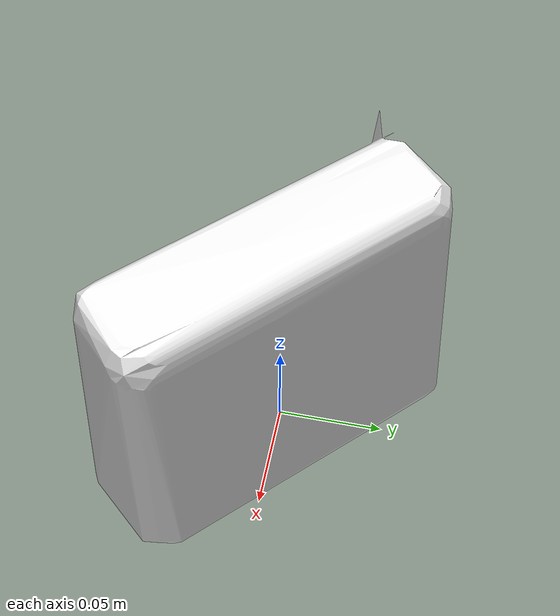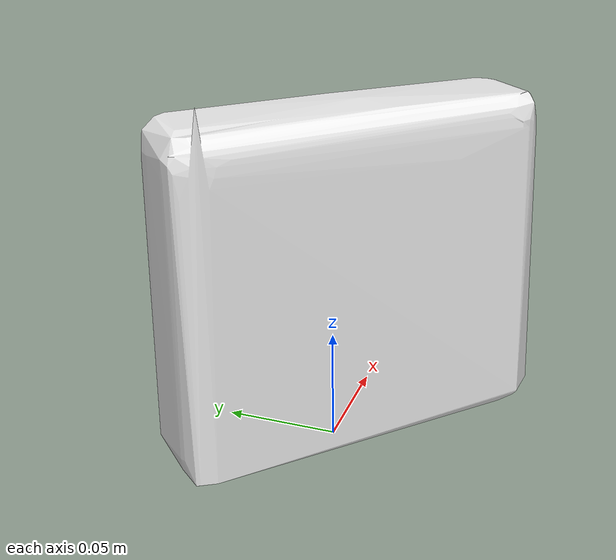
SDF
<?xml version='1.0'?>
<sdf version="1.4">
  <model name="clif_crunch_white_chocolate_macademia_nut">
    <static>false</static>
    <link name="link">
      <inertial>
        <pose>0.013065570766222109 -0.0026968554300056597 0.07489887787279072 1.5574703786760513 0.01265800758050543 -2.3611111910469815</pose>
        <mass>0.12054650007775884</mass>
        <inertia>
          <ixx>0.00046412480492953996</ixx>
          <ixy>1.0743052893661811e-21</ixy>
          <ixz>1.5359518234319693e-20</ixz>
          <iyy>0.00028820831488987126</iyy>
          <iyz>-6.106252291272276e-22</iyz>
          <izz>0.00022979933310841324</izz>
        </inertia>
      </inertial>
      <collision name="collision">
        <geometry>
          <mesh>
            <!-- Use a downsampled mesh for collisions -->
            <uri>model:///clif_crunch_white_chocolate_macademia_nut/clif_crunch_white_chocolate_macademia_nut_250_collision.obj</uri>
	        </mesh>
        </geometry>
        <surface>
      </surface>
      </collision>
      <visual name="visual">
        <geometry>
          <mesh>
            <uri>model:///clif_crunch_white_chocolate_macademia_nut/optimized_tsdf_texture_mapped_mesh.obj</uri>
	        </mesh>
        </geometry>
        <material>
          <script>
            <uri>model:///clif_crunch_white_chocolate_macademia_nut/clif_crunch_white_chocolate_macademia_nut.material</uri>
            <name>clif_crunch_white_chocolate_macademia_nut</name>
          </script>
        </material>
      </visual>
    </link>
  </model>
</sdf>
